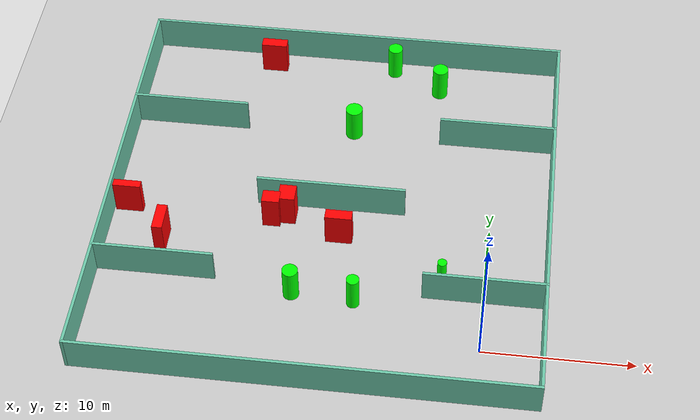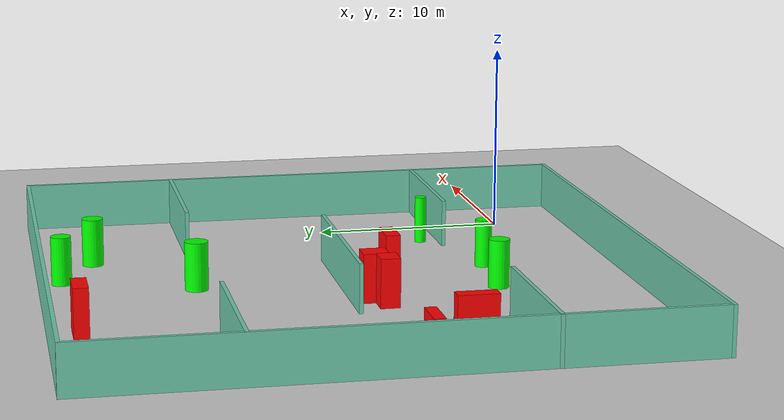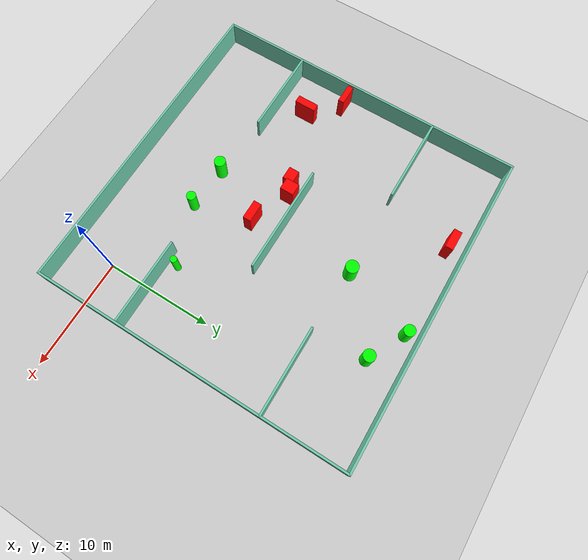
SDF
<sdf version="1.7">
 <world name="default">
  <light name="sun" type="directional">
   <pose>0 0 10 0 -0 0</pose>
   <diffuse>0.8 0.8 0.8 1</diffuse>
   <specular>0.2 0.2 0.2 1</specular>
   <attenuation>
    <range>1000</range>
    <constant>0.9</constant>
    <linear>0.01</linear>
    <quadratic>0.001</quadratic>
   </attenuation>
   <direction>-0.5 0.1 -0.9</direction>
   <spot><inner_angle>0</inner_angle><outer_angle>0</outer_angle><falloff>0</falloff></spot>
  </light>
  <model name="ground_plane">
   <static>1</static>
   <link name="link">
    <collision name="collision">
     <geometry><plane><normal>0 0 1</normal><size>100 100</size></plane></geometry>
     <surface>
      <contact><collide_bitmask>65535</collide_bitmask></contact>
      <friction><ode><mu>100</mu><mu2>50</mu2></ode></friction>
     </surface>
    </collision>
    <visual name="visual">
     <cast_shadows>0</cast_shadows>
     <geometry><plane><normal>0 0 1</normal><size>100 100</size></plane></geometry>
     <material>
      <script><uri>file://media/materials/scripts/gazebo.material</uri><name>Gazebo/Grey</name></script>
     </material>
    </visual>
   </link>
  </model>
  <gravity>0 0 -9.8</gravity>
  <magnetic_field>6e-06 2.3e-05 -4.2e-05</magnetic_field>
  <atmosphere type="adiabatic"/>
  <physics type="ode">
   <max_step_size>0.001</max_step_size>
   <real_time_factor>1</real_time_factor>
   <real_time_update_rate>1000</real_time_update_rate>
  </physics>
  <scene><ambient>0.4 0.4 0.4 1</ambient><background>0.7 0.7 0.7 1</background><shadows>1</shadows></scene>
  <spherical_coordinates>
   <surface_model>EARTH_WGS84</surface_model>
   <latitude_deg>0</latitude_deg>
   <longitude_deg>0</longitude_deg>
   <elevation>0</elevation>
   <heading_deg>0</heading_deg>
  </spherical_coordinates>
  <model name="my_base_walls">
   <link name="Wall_10">
    <collision name="Wall_10_Collision">
     <geometry><box><size>8.2 0.2 2.5</size></box></geometry>
     <pose>0 0 1.25 0 -0 0</pose>
    </collision>
    <visual name="Wall_10_Visual">
     <pose>0 0 1.25 0 -0 0</pose>
     <geometry><box><size>8.2 0.2 2.5</size></box></geometry>
     <material>
      <script><uri>file://media/materials/scripts/gazebo.material</uri><name>Gazebo/Grey</name></script>
      <ambient>0.435294 0.796078 0.67451 1</ambient>
     </material>
     <meta><layer>0</layer></meta>
    </visual>
    <pose>-11 -7 0 0 -0 0</pose>
   </link>
   <link name="Wall_12">
    <collision name="Wall_12_Collision">
     <geometry><box><size>8.2 0.2 2.5</size></box></geometry>
     <pose>0 0 1.25 0 -0 0</pose>
    </collision>
    <visual name="Wall_12_Visual">
     <pose>0 0 1.25 0 -0 0</pose>
     <geometry><box><size>8.2 0.2 2.5</size></box></geometry>
     <material>
      <script><uri>file://media/materials/scripts/gazebo.material</uri><name>Gazebo/Grey</name></script>
      <ambient>0.435294 0.796078 0.67451 1</ambient>
     </material>
     <meta><layer>0</layer></meta>
    </visual>
    <pose>-11 7 0 0 -0 0</pose>
   </link>
   <link name="Wall_14">
    <collision name="Wall_14_Collision">
     <geometry><box><size>8.2 0.2 2.5</size></box></geometry>
     <pose>0 0 1.25 0 -0 0</pose>
    </collision>
    <visual name="Wall_14_Visual">
     <pose>0 0 1.25 0 -0 0</pose>
     <geometry><box><size>8.2 0.2 2.5</size></box></geometry>
     <material>
      <script><uri>file://media/materials/scripts/gazebo.material</uri><name>Gazebo/Grey</name></script>
      <ambient>0.435294 0.796078 0.67451 1</ambient>
     </material>
     <meta><layer>0</layer></meta>
    </visual>
    <pose>11 7 0 0 -0 3.14159</pose>
   </link>
   <link name="Wall_16">
    <collision name="Wall_16_Collision">
     <geometry><box><size>10.2 0.2 2.5</size></box></geometry>
     <pose>0 0 1.25 0 -0 0</pose>
    </collision>
    <visual name="Wall_16_Visual">
     <pose>0 0 1.25 0 -0 0</pose>
     <geometry><box><size>10.2 0.2 2.5</size></box></geometry>
     <material>
      <script><uri>file://media/materials/scripts/gazebo.material</uri><name>Gazebo/Grey</name></script>
      <ambient>0.435294 0.796078 0.67451 1</ambient>
     </material>
     <meta><layer>0</layer></meta>
    </visual>
    <pose>0 0 0 0 -0 3.14159</pose>
   </link>
   <link name="Wall_2">
    <collision name="Wall_2_Collision">
     <geometry><box><size>30.2 0.2 2.5</size></box></geometry>
     <pose>0 0 1.25 0 -0 0</pose>
    </collision>
    <visual name="Wall_2_Visual">
     <pose>0 0 1.25 0 -0 0</pose>
     <geometry><box><size>30.2 0.2 2.5</size></box></geometry>
     <material>
      <script><uri>file://media/materials/scripts/gazebo.material</uri><name>Gazebo/Grey</name></script>
      <ambient>0.435294 0.796078 0.67451 1</ambient>
     </material>
     <meta><layer>0</layer></meta>
    </visual>
    <pose>0 -15 0 0 -0 3.14159</pose>
   </link>
   <link name="Wall_3">
    <collision name="Wall_3_Collision">
     <geometry><box><size>30.2 0.2 2.5</size></box></geometry>
     <pose>0 0 1.25 0 -0 0</pose>
    </collision>
    <visual name="Wall_3_Visual">
     <pose>0 0 1.25 0 -0 0</pose>
     <geometry><box><size>30.2 0.2 2.5</size></box></geometry>
     <material>
      <script><uri>file://media/materials/scripts/gazebo.material</uri><name>Gazebo/Grey</name></script>
      <ambient>0.435294 0.796078 0.67451 1</ambient>
     </material>
     <meta><layer>0</layer></meta>
    </visual>
    <pose>-15 0 0 0 -0 1.5708</pose>
   </link>
   <link name="Wall_4">
    <collision name="Wall_4_Collision">
     <geometry><box><size>30.2 0.2 2.5</size></box></geometry>
     <pose>0 0 1.25 0 -0 0</pose>
    </collision>
    <visual name="Wall_4_Visual">
     <pose>0 0 1.25 0 -0 0</pose>
     <geometry><box><size>30.2 0.2 2.5</size></box></geometry>
     <material>
      <script><uri>file://media/materials/scripts/gazebo.material</uri><name>Gazebo/Grey</name></script>
      <ambient>0.435294 0.796078 0.67451 1</ambient>
     </material>
     <meta><layer>0</layer></meta>
    </visual>
    <pose>0 15 0 0 -0 0</pose>
   </link>
   <link name="Wall_6">
    <collision name="Wall_6_Collision">
     <geometry><box><size>30.2 0.2 2.5</size></box></geometry>
     <pose>0 0 1.25 0 -0 0</pose>
    </collision>
    <visual name="Wall_6_Visual">
     <pose>0 0 1.25 0 -0 0</pose>
     <geometry><box><size>30.2 0.2 2.5</size></box></geometry>
     <material>
      <script><uri>file://media/materials/scripts/gazebo.material</uri><name>Gazebo/Grey</name></script>
      <ambient>0.435294 0.796078 0.67451 1</ambient>
     </material>
     <meta><layer>0</layer></meta>
    </visual>
    <pose>15 0 0 0 -0 1.5708</pose>
   </link>
   <link name="Wall_8">
    <collision name="Wall_8_Collision">
     <geometry><box><size>8.2 0.2 2.5</size></box></geometry>
     <pose>0 0 1.25 0 -0 0</pose>
    </collision>
    <visual name="Wall_8_Visual">
     <pose>0 0 1.25 0 -0 0</pose>
     <geometry><box><size>8.2 0.2 2.5</size></box></geometry>
     <material>
      <script><uri>file://media/materials/scripts/gazebo.material</uri><name>Gazebo/Grey</name></script>
      <ambient>0.435294 0.796078 0.67451 1</ambient>
     </material>
     <meta><layer>0</layer></meta>
    </visual>
    <pose>11 -7 0 0 -0 3.14159</pose>
   </link>
   <static>1</static>
   <pose>-11 11 0 0 -0 0</pose>
  </model>
  <model name="cylinder1">
   <static>1</static>
   <link name="link">
    <inertial>
     <mass>1</mass>
     <inertia><ixx>0.5</ixx><ixy>0</ixy><ixz>0</ixz><iyy>0.5</iyy><iyz>0</iyz><izz>1</izz></inertia>
    </inertial>
    <collision name="collision">
     <geometry><cylinder><radius>0.43321399471480787</radius><length>2.5</length></cylinder></geometry>
    </collision>
    <visual name="visual">
     <geometry><cylinder><radius>0.43321399471480787</radius><length>2.5</length></cylinder></geometry>
     <material>
      <ambient>0 1 0 1</ambient>
      <diffuse>0 1 0 1</diffuse>
      <specular>0.1 0.1 0.1 1</specular>
      <emissive>0 0 0 0</emissive>
     </material>
    </visual>
   </link>
   <pose>-8.530890164490405 2.943009337617733 1.25 0 0 0</pose>
  </model>
  <model name="cylinder2">
   <static>1</static>
   <link name="link">
    <inertial>
     <mass>1</mass>
     <inertia><ixx>0.5</ixx><ixy>0</ixy><ixz>0</ixz><iyy>0.5</iyy><iyz>0</iyz><izz>1</izz></inertia>
    </inertial>
    <collision name="collision">
     <geometry><cylinder><radius>0.5173686170059154</radius><length>2.5</length></cylinder></geometry>
    </collision>
    <visual name="visual">
     <geometry><cylinder><radius>0.5173686170059154</radius><length>2.5</length></cylinder></geometry>
     <material>
      <ambient>0 1 0 1</ambient>
      <diffuse>0 1 0 1</diffuse>
      <specular>0.1 0.1 0.1 1</specular>
      <emissive>0 0 0 0</emissive>
     </material>
    </visual>
   </link>
   <pose>-7.9907948079255835 24.87420062633957 1.25 0 0 0</pose>
  </model>
  <model name="cylinder3">
   <static>1</static>
   <link name="link">
    <inertial>
     <mass>1</mass>
     <inertia><ixx>0.5</ixx><ixy>0</ixy><ixz>0</ixz><iyy>0.5</iyy><iyz>0</iyz><izz>1</izz></inertia>
    </inertial>
    <collision name="collision">
     <geometry><cylinder><radius>0.30787375637645004</radius><length>2.5</length></cylinder></geometry>
    </collision>
    <visual name="visual">
     <geometry><cylinder><radius>0.30787375637645004</radius><length>2.5</length></cylinder></geometry>
     <material>
      <ambient>0 1 0 1</ambient>
      <diffuse>0 1 0 1</diffuse>
      <specular>0.1 0.1 0.1 1</specular>
      <emissive>0 0 0 0</emissive>
     </material>
    </visual>
   </link>
   <pose>-2.9010701251468802 5.015113335170394 1.25 0 0 0</pose>
  </model>
  <model name="cylinder4">
   <static>1</static>
   <link name="link">
    <inertial>
     <mass>1</mass>
     <inertia><ixx>0.5</ixx><ixy>0</ixy><ixz>0</ixz><iyy>0.5</iyy><iyz>0</iyz><izz>1</izz></inertia>
    </inertial>
    <collision name="collision">
     <geometry><cylinder><radius>0.5305990851060397</radius><length>2.5</length></cylinder></geometry>
    </collision>
    <visual name="visual">
     <geometry><cylinder><radius>0.5305990851060397</radius><length>2.5</length></cylinder></geometry>
     <material>
      <ambient>0 1 0 1</ambient>
      <diffuse>0 1 0 1</diffuse>
      <specular>0.1 0.1 0.1 1</specular>
      <emissive>0 0 0 0</emissive>
     </material>
    </visual>
   </link>
   <pose>-12.678197992698362 3.23083616232322 1.25 0 0 0</pose>
  </model>
  <model name="cylinder5">
   <static>1</static>
   <link name="link">
    <inertial>
     <mass>1</mass>
     <inertia><ixx>0.5</ixx><ixy>0</ixy><ixz>0</ixz><iyy>0.5</iyy><iyz>0</iyz><izz>1</izz></inertia>
    </inertial>
    <collision name="collision">
     <geometry><cylinder><radius>0.5981237420668946</radius><length>2.5</length></cylinder></geometry>
    </collision>
    <visual name="visual">
     <geometry><cylinder><radius>0.5981237420668946</radius><length>2.5</length></cylinder></geometry>
     <material>
      <ambient>0 1 0 1</ambient>
      <diffuse>0 1 0 1</diffuse>
      <specular>0.1 0.1 0.1 1</specular>
      <emissive>0 0 0 0</emissive>
     </material>
    </visual>
   </link>
   <pose>-10.278862976481326 18.262992237351384 1.25 0 0 0</pose>
  </model>
  <model name="cylinder6">
   <static>1</static>
   <link name="link">
    <inertial>
     <mass>1</mass>
     <inertia><ixx>0.5</ixx><ixy>0</ixy><ixz>0</ixz><iyy>0.5</iyy><iyz>0</iyz><izz>1</izz></inertia>
    </inertial>
    <collision name="collision">
     <geometry><cylinder><radius>0.5533499382485826</radius><length>2.5</length></cylinder></geometry>
    </collision>
    <visual name="visual">
     <geometry><cylinder><radius>0.5533499382485826</radius><length>2.5</length></cylinder></geometry>
     <material>
      <ambient>0 1 0 1</ambient>
      <diffuse>0 1 0 1</diffuse>
      <specular>0.1 0.1 0.1 1</specular>
      <emissive>0 0 0 0</emissive>
     </material>
    </visual>
   </link>
   <pose>-4.506418605535771 23.03795862727253 1.25 0 0 0</pose>
  </model>
  <model name="box1">
   <static>1</static>
   <link name="link">
    <inertial>
     <mass>1</mass>
     <inertia><ixx>0.083</ixx><ixy>0</ixy><ixz>0</ixz><iyy>0.083</iyy><iyz>0</iyz><izz>0.083</izz></inertia>
    </inertial>
    <collision name="collision">
     <geometry><box><size>1.1399340994645883 1.2932883001297342 2.5</size></box></geometry>
    </collision>
    <visual name="visual">
     <geometry><box><size>1.1399340994645883 1.2932883001297342 2.5</size></box></geometry>
     <material>
      <ambient>1 0 0 1</ambient>
      <diffuse>1 0 0 1</diffuse>
      <specular>0.1 0.1 0.1 1</specular>
      <emissive>0 0 0 0</emissive>
     </material>
    </visual>
    <sensor name="my_contact" type="contact">
     <contact><collision>box_collision</collision><topic>__default_topic__</topic></contact>
    </sensor>
   </link>
   <pose>-13.850488814813168 9.909302357122003 1.25 0 0 0</pose>
  </model>
  <model name="box2">
   <static>1</static>
   <link name="link">
    <inertial>
     <mass>1</mass>
     <inertia><ixx>0.083</ixx><ixy>0</ixy><ixz>0</ixz><iyy>0.083</iyy><iyz>0</iyz><izz>0.083</izz></inertia>
    </inertial>
    <collision name="collision">
     <geometry><box><size>1.8424197309152706 0.7514033232666855 2.5</size></box></geometry>
    </collision>
    <visual name="visual">
     <geometry><box><size>1.8424197309152706 0.7514033232666855 2.5</size></box></geometry>
     <material>
      <ambient>1 0 0 1</ambient>
      <diffuse>1 0 0 1</diffuse>
      <specular>0.1 0.1 0.1 1</specular>
      <emissive>0 0 0 0</emissive>
     </material>
    </visual>
    <sensor name="my_contact" type="contact">
     <contact><collision>box_collision</collision><topic>__default_topic__</topic></contact>
    </sensor>
   </link>
   <pose>-16.961587389336284 24.50726992491651 1.25 0 0 0</pose>
  </model>
  <model name="box3">
   <static>1</static>
   <link name="link">
    <inertial>
     <mass>1</mass>
     <inertia><ixx>0.083</ixx><ixy>0</ixy><ixz>0</ixz><iyy>0.083</iyy><iyz>0</iyz><izz>0.083</izz></inertia>
    </inertial>
    <collision name="collision">
     <geometry><box><size>1.823445308255093 0.7564608704778499 2.5</size></box></geometry>
    </collision>
    <visual name="visual">
     <geometry><box><size>1.823445308255093 0.7564608704778499 2.5</size></box></geometry>
     <material>
      <ambient>1 0 0 1</ambient>
      <diffuse>1 0 0 1</diffuse>
      <specular>0.1 0.1 0.1 1</specular>
      <emissive>0 0 0 0</emissive>
     </material>
    </visual>
    <sensor name="my_contact" type="contact">
     <contact><collision>box_collision</collision><topic>__default_topic__</topic></contact>
    </sensor>
   </link>
   <pose>-10.132854199892279 8.325773286819981 1.25 0 0 0</pose>
  </model>
  <model name="box4">
   <static>1</static>
   <link name="link">
    <inertial>
     <mass>1</mass>
     <inertia><ixx>0.083</ixx><ixy>0</ixy><ixz>0</ixz><iyy>0.083</iyy><iyz>0</iyz><izz>0.083</izz></inertia>
    </inertial>
    <collision name="collision">
     <geometry><box><size>0.7116167177913841 2.0116181001988127 2.5</size></box></geometry>
    </collision>
    <visual name="visual">
     <geometry><box><size>0.7116167177913841 2.0116181001988127 2.5</size></box></geometry>
     <material>
      <ambient>1 0 0 1</ambient>
      <diffuse>1 0 0 1</diffuse>
      <specular>0.1 0.1 0.1 1</specular>
      <emissive>0 0 0 0</emissive>
     </material>
    </visual>
    <sensor name="my_contact" type="contact">
     <contact><collision>box_collision</collision><topic>__default_topic__</topic></contact>
    </sensor>
   </link>
   <pose>-22.021604684660023 6.8149195239938845 1.25 0 0 0</pose>
  </model>
  <model name="box5">
   <static>1</static>
   <link name="link">
    <inertial>
     <mass>1</mass>
     <inertia><ixx>0.083</ixx><ixy>0</ixy><ixz>0</ixz><iyy>0.083</iyy><iyz>0</iyz><izz>0.083</izz></inertia>
    </inertial>
    <collision name="collision">
     <geometry><box><size>1.8932047633113012 0.5556692546900275 2.5</size></box></geometry>
    </collision>
    <visual name="visual">
     <geometry><box><size>1.8932047633113012 0.5556692546900275 2.5</size></box></geometry>
     <material>
      <ambient>1 0 0 1</ambient>
      <diffuse>1 0 0 1</diffuse>
      <specular>0.1 0.1 0.1 1</specular>
      <emissive>0 0 0 0</emissive>
     </material>
    </visual>
    <sensor name="my_contact" type="contact">
     <contact><collision>box_collision</collision><topic>__default_topic__</topic></contact>
    </sensor>
   </link>
   <pose>-24.824119396840604 9.464950615957639 1.25 0 0 0</pose>
  </model>
  <model name="box6">
   <static>1</static>
   <link name="link">
    <inertial>
     <mass>1</mass>
     <inertia><ixx>0.083</ixx><ixy>0</ixy><ixz>0</ixz><iyy>0.083</iyy><iyz>0</iyz><izz>0.083</izz></inertia>
    </inertial>
    <collision name="collision">
     <geometry><box><size>1.1978466756663333 0.995960409536587 2.5</size></box></geometry>
    </collision>
    <visual name="visual">
     <geometry><box><size>1.1978466756663333 0.995960409536587 2.5</size></box></geometry>
     <material>
      <ambient>1 0 0 1</ambient>
      <diffuse>1 0 0 1</diffuse>
      <specular>0.1 0.1 0.1 1</specular>
      <emissive>0 0 0 0</emissive>
     </material>
    </visual>
    <sensor name="my_contact" type="contact">
     <contact><collision>box_collision</collision><topic>__default_topic__</topic></contact>
    </sensor>
   </link>
   <pose>-14.886866007598357 9.416179705902449 1.25 0 0 0</pose>
  </model>
 </world>
</sdf>
